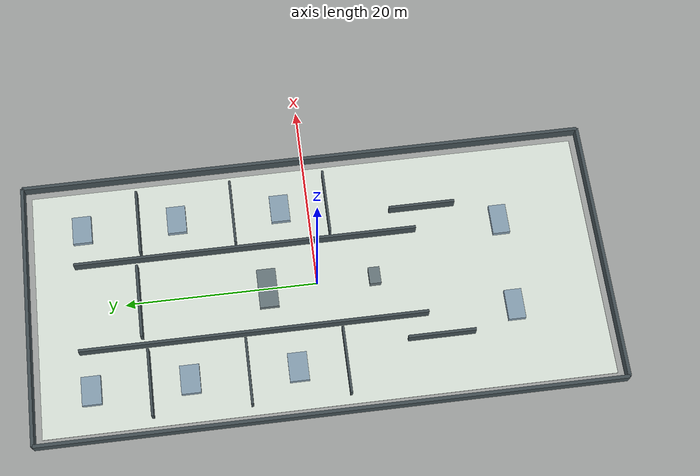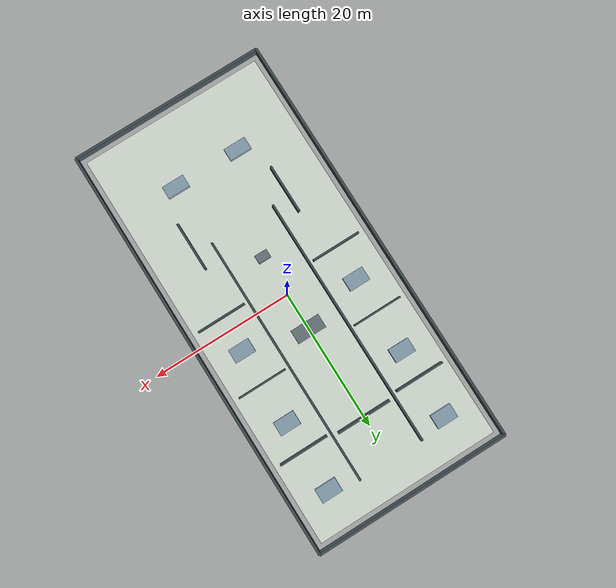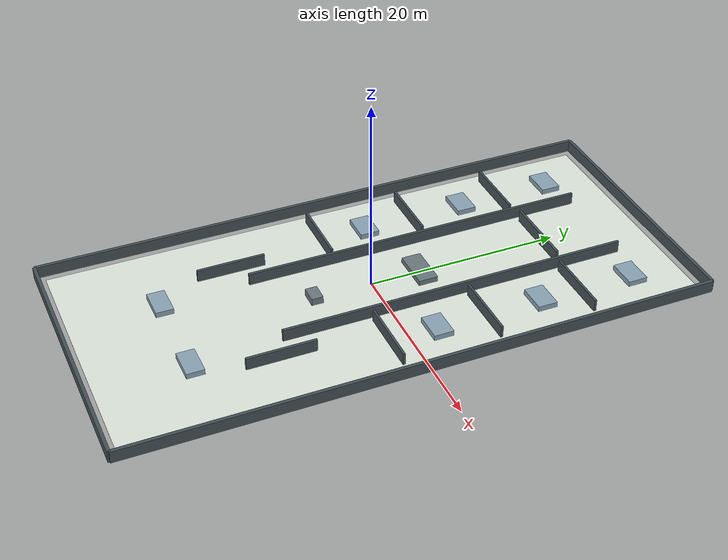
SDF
<?xml version="1.0" ?>
<sdf version="1.6">
  <world name="care_home_small">
    <gravity>0 0 -9.8</gravity>
    <scene>
      <ambient>0.65 0.65 0.65 1</ambient>
      <background>0.78 0.84 0.88 1</background>
    </scene>
    <include>
      <uri>model://sun</uri>
    </include>
    <model name="care_home_small_floor">
      <static>true</static>
      <pose>0.000 0.000 -0.025 0 0 0</pose>
      <link name="floor_link">
        <collision name="floor_collision">
          <geometry>
            <box><size>26.400 58.400 0.050</size></box>
          </geometry>
        </collision>
        <visual name="floor_visual">
          <geometry>
            <box><size>26.400 58.400 0.050</size></box>
          </geometry>
          <material><ambient>0.88 0.92 0.88 1</ambient><diffuse>0.88 0.92 0.88 1</diffuse></material>
        </visual>
      </link>
    </model>
    <model name="outer_north">
      <static>true</static>
      <pose>0.000 30.000 0.625 0 0 0</pose>
      <link name="outer_north_link">
        <collision name="outer_north_collision">
          <geometry>
            <box><size>28.000 0.350 1.250</size></box>
          </geometry>
        </collision>
        <visual name="outer_north_visual">
          <geometry>
            <box><size>28.000 0.350 1.250</size></box>
          </geometry>
          <material><ambient>0.27 0.32 0.34 1</ambient><diffuse>0.27 0.32 0.34 1</diffuse></material>
        </visual>
      </link>
    </model>
    <model name="outer_south">
      <static>true</static>
      <pose>0.000 -30.000 0.625 0 0 0</pose>
      <link name="outer_south_link">
        <collision name="outer_south_collision">
          <geometry>
            <box><size>28.000 0.350 1.250</size></box>
          </geometry>
        </collision>
        <visual name="outer_south_visual">
          <geometry>
            <box><size>28.000 0.350 1.250</size></box>
          </geometry>
          <material><ambient>0.27 0.32 0.34 1</ambient><diffuse>0.27 0.32 0.34 1</diffuse></material>
        </visual>
      </link>
    </model>
    <model name="outer_west">
      <static>true</static>
      <pose>-14.000 0.000 0.625 0 0 0</pose>
      <link name="outer_west_link">
        <collision name="outer_west_collision">
          <geometry>
            <box><size>0.350 60.000 1.250</size></box>
          </geometry>
        </collision>
        <visual name="outer_west_visual">
          <geometry>
            <box><size>0.350 60.000 1.250</size></box>
          </geometry>
          <material><ambient>0.27 0.32 0.34 1</ambient><diffuse>0.27 0.32 0.34 1</diffuse></material>
        </visual>
      </link>
    </model>
    <model name="outer_east">
      <static>true</static>
      <pose>14.000 0.000 0.625 0 0 0</pose>
      <link name="outer_east_link">
        <collision name="outer_east_collision">
          <geometry>
            <box><size>0.350 60.000 1.250</size></box>
          </geometry>
        </collision>
        <visual name="outer_east_visual">
          <geometry>
            <box><size>0.350 60.000 1.250</size></box>
          </geometry>
          <material><ambient>0.27 0.32 0.34 1</ambient><diffuse>0.27 0.32 0.34 1</diffuse></material>
        </visual>
      </link>
    </model>
    <model name="care_west_spine">
      <static>true</static>
      <pose>-4.700 7.000 0.625 0 0 0</pose>
      <link name="care_west_spine_link">
        <collision name="care_west_spine_collision">
          <geometry>
            <box><size>0.280 36.000 1.250</size></box>
          </geometry>
        </collision>
        <visual name="care_west_spine_visual">
          <geometry>
            <box><size>0.280 36.000 1.250</size></box>
          </geometry>
          <material><ambient>0.27 0.32 0.34 1</ambient><diffuse>0.27 0.32 0.34 1</diffuse></material>
        </visual>
      </link>
    </model>
    <model name="care_east_spine">
      <static>true</static>
      <pose>4.700 7.000 0.625 0 0 0</pose>
      <link name="care_east_spine_link">
        <collision name="care_east_spine_collision">
          <geometry>
            <box><size>0.280 36.000 1.250</size></box>
          </geometry>
        </collision>
        <visual name="care_east_spine_visual">
          <geometry>
            <box><size>0.280 36.000 1.250</size></box>
          </geometry>
          <material><ambient>0.27 0.32 0.34 1</ambient><diffuse>0.27 0.32 0.34 1</diffuse></material>
        </visual>
      </link>
    </model>
    <model name="care_west_room_divider_a">
      <static>true</static>
      <pose>-8.800 -2.000 0.625 0 0 0</pose>
      <link name="care_west_room_divider_a_link">
        <collision name="care_west_room_divider_a_collision">
          <geometry>
            <box><size>7.000 0.240 1.250</size></box>
          </geometry>
        </collision>
        <visual name="care_west_room_divider_a_visual">
          <geometry>
            <box><size>7.000 0.240 1.250</size></box>
          </geometry>
          <material><ambient>0.27 0.32 0.34 1</ambient><diffuse>0.27 0.32 0.34 1</diffuse></material>
        </visual>
      </link>
    </model>
    <model name="care_west_room_divider_b">
      <static>true</static>
      <pose>-8.800 8.000 0.625 0 0 0</pose>
      <link name="care_west_room_divider_b_link">
        <collision name="care_west_room_divider_b_collision">
          <geometry>
            <box><size>7.000 0.240 1.250</size></box>
          </geometry>
        </collision>
        <visual name="care_west_room_divider_b_visual">
          <geometry>
            <box><size>7.000 0.240 1.250</size></box>
          </geometry>
          <material><ambient>0.27 0.32 0.34 1</ambient><diffuse>0.27 0.32 0.34 1</diffuse></material>
        </visual>
      </link>
    </model>
    <model name="care_west_room_divider_c">
      <static>true</static>
      <pose>-8.800 18.000 0.625 0 0 0</pose>
      <link name="care_west_room_divider_c_link">
        <collision name="care_west_room_divider_c_collision">
          <geometry>
            <box><size>7.000 0.240 1.250</size></box>
          </geometry>
        </collision>
        <visual name="care_west_room_divider_c_visual">
          <geometry>
            <box><size>7.000 0.240 1.250</size></box>
          </geometry>
          <material><ambient>0.27 0.32 0.34 1</ambient><diffuse>0.27 0.32 0.34 1</diffuse></material>
        </visual>
      </link>
    </model>
    <model name="care_east_room_divider_a">
      <static>true</static>
      <pose>8.800 -2.000 0.625 0 0 0</pose>
      <link name="care_east_room_divider_a_link">
        <collision name="care_east_room_divider_a_collision">
          <geometry>
            <box><size>7.000 0.240 1.250</size></box>
          </geometry>
        </collision>
        <visual name="care_east_room_divider_a_visual">
          <geometry>
            <box><size>7.000 0.240 1.250</size></box>
          </geometry>
          <material><ambient>0.27 0.32 0.34 1</ambient><diffuse>0.27 0.32 0.34 1</diffuse></material>
        </visual>
      </link>
    </model>
    <model name="care_east_room_divider_b">
      <static>true</static>
      <pose>8.800 8.000 0.625 0 0 0</pose>
      <link name="care_east_room_divider_b_link">
        <collision name="care_east_room_divider_b_collision">
          <geometry>
            <box><size>7.000 0.240 1.250</size></box>
          </geometry>
        </collision>
        <visual name="care_east_room_divider_b_visual">
          <geometry>
            <box><size>7.000 0.240 1.250</size></box>
          </geometry>
          <material><ambient>0.27 0.32 0.34 1</ambient><diffuse>0.27 0.32 0.34 1</diffuse></material>
        </visual>
      </link>
    </model>
    <model name="care_east_room_divider_c">
      <static>true</static>
      <pose>8.800 18.000 0.625 0 0 0</pose>
      <link name="care_east_room_divider_c_link">
        <collision name="care_east_room_divider_c_collision">
          <geometry>
            <box><size>7.000 0.240 1.250</size></box>
          </geometry>
        </collision>
        <visual name="care_east_room_divider_c_visual">
          <geometry>
            <box><size>7.000 0.240 1.250</size></box>
          </geometry>
          <material><ambient>0.27 0.32 0.34 1</ambient><diffuse>0.27 0.32 0.34 1</diffuse></material>
        </visual>
      </link>
    </model>
    <model name="care_lobby_wall_l">
      <static>true</static>
      <pose>-7.200 -12.000 0.625 0 0 0</pose>
      <link name="care_lobby_wall_l_link">
        <collision name="care_lobby_wall_l_collision">
          <geometry>
            <box><size>0.280 7.000 1.250</size></box>
          </geometry>
        </collision>
        <visual name="care_lobby_wall_l_visual">
          <geometry>
            <box><size>0.280 7.000 1.250</size></box>
          </geometry>
          <material><ambient>0.27 0.32 0.34 1</ambient><diffuse>0.27 0.32 0.34 1</diffuse></material>
        </visual>
      </link>
    </model>
    <model name="care_lobby_wall_r">
      <static>true</static>
      <pose>7.200 -12.000 0.625 0 0 0</pose>
      <link name="care_lobby_wall_r_link">
        <collision name="care_lobby_wall_r_collision">
          <geometry>
            <box><size>0.280 7.000 1.250</size></box>
          </geometry>
        </collision>
        <visual name="care_lobby_wall_r_visual">
          <geometry>
            <box><size>0.280 7.000 1.250</size></box>
          </geometry>
          <material><ambient>0.27 0.32 0.34 1</ambient><diffuse>0.27 0.32 0.34 1</diffuse></material>
        </visual>
      </link>
    </model>
    <model name="care_dining_table">
      <static>true</static>
      <pose>0.000 5.200 0.275 0 0 0</pose>
      <link name="care_dining_table_link">
        <collision name="care_dining_table_collision">
          <geometry>
            <box><size>4.200 2.000 0.550</size></box>
          </geometry>
        </collision>
        <visual name="care_dining_table_visual">
          <geometry>
            <box><size>4.200 2.000 0.550</size></box>
          </geometry>
          <material><ambient>0.42 0.48 0.50 1</ambient><diffuse>0.42 0.48 0.50 1</diffuse></material>
        </visual>
      </link>
    </model>
    <model name="care_sofa_1">
      <static>true</static>
      <pose>-4.800 -20.000 0.275 0 0 0</pose>
      <link name="care_sofa_1_link">
        <collision name="care_sofa_1_collision">
          <geometry>
            <box><size>3.200 1.800 0.550</size></box>
          </geometry>
        </collision>
        <visual name="care_sofa_1_visual">
          <geometry>
            <box><size>3.200 1.800 0.550</size></box>
          </geometry>
          <material><ambient>0.55 0.65 0.72 1</ambient><diffuse>0.55 0.65 0.72 1</diffuse></material>
        </visual>
      </link>
    </model>
    <model name="care_sofa_2">
      <static>true</static>
      <pose>4.800 -20.000 0.275 0 0 0</pose>
      <link name="care_sofa_2_link">
        <collision name="care_sofa_2_collision">
          <geometry>
            <box><size>3.200 1.800 0.550</size></box>
          </geometry>
        </collision>
        <visual name="care_sofa_2_visual">
          <geometry>
            <box><size>3.200 1.800 0.550</size></box>
          </geometry>
          <material><ambient>0.55 0.65 0.72 1</ambient><diffuse>0.55 0.65 0.72 1</diffuse></material>
        </visual>
      </link>
    </model>
    <model name="care_med_wall">
      <static>true</static>
      <pose>0.000 18.500 0.625 0 0 0</pose>
      <link name="care_med_wall_link">
        <collision name="care_med_wall_collision">
          <geometry>
            <box><size>7.800 0.280 1.250</size></box>
          </geometry>
        </collision>
        <visual name="care_med_wall_visual">
          <geometry>
            <box><size>7.800 0.280 1.250</size></box>
          </geometry>
          <material><ambient>0.27 0.32 0.34 1</ambient><diffuse>0.27 0.32 0.34 1</diffuse></material>
        </visual>
      </link>
    </model>
    <model name="care_bed_w1">
      <static>true</static>
      <pose>-8.800 3.000 0.275 0 0 0</pose>
      <link name="care_bed_w1_link">
        <collision name="care_bed_w1_collision">
          <geometry>
            <box><size>3.000 2.000 0.550</size></box>
          </geometry>
        </collision>
        <visual name="care_bed_w1_visual">
          <geometry>
            <box><size>3.000 2.000 0.550</size></box>
          </geometry>
          <material><ambient>0.55 0.65 0.72 1</ambient><diffuse>0.55 0.65 0.72 1</diffuse></material>
        </visual>
      </link>
    </model>
    <model name="care_bed_w2">
      <static>true</static>
      <pose>-8.800 14.000 0.275 0 0 0</pose>
      <link name="care_bed_w2_link">
        <collision name="care_bed_w2_collision">
          <geometry>
            <box><size>3.000 2.000 0.550</size></box>
          </geometry>
        </collision>
        <visual name="care_bed_w2_visual">
          <geometry>
            <box><size>3.000 2.000 0.550</size></box>
          </geometry>
          <material><ambient>0.55 0.65 0.72 1</ambient><diffuse>0.55 0.65 0.72 1</diffuse></material>
        </visual>
      </link>
    </model>
    <model name="care_bed_w3">
      <static>true</static>
      <pose>-8.800 24.000 0.275 0 0 0</pose>
      <link name="care_bed_w3_link">
        <collision name="care_bed_w3_collision">
          <geometry>
            <box><size>3.000 2.000 0.550</size></box>
          </geometry>
        </collision>
        <visual name="care_bed_w3_visual">
          <geometry>
            <box><size>3.000 2.000 0.550</size></box>
          </geometry>
          <material><ambient>0.55 0.65 0.72 1</ambient><diffuse>0.55 0.65 0.72 1</diffuse></material>
        </visual>
      </link>
    </model>
    <model name="care_bed_e1">
      <static>true</static>
      <pose>8.800 3.000 0.275 0 0 0</pose>
      <link name="care_bed_e1_link">
        <collision name="care_bed_e1_collision">
          <geometry>
            <box><size>3.000 2.000 0.550</size></box>
          </geometry>
        </collision>
        <visual name="care_bed_e1_visual">
          <geometry>
            <box><size>3.000 2.000 0.550</size></box>
          </geometry>
          <material><ambient>0.55 0.65 0.72 1</ambient><diffuse>0.55 0.65 0.72 1</diffuse></material>
        </visual>
      </link>
    </model>
    <model name="care_bed_e2">
      <static>true</static>
      <pose>8.800 14.000 0.275 0 0 0</pose>
      <link name="care_bed_e2_link">
        <collision name="care_bed_e2_collision">
          <geometry>
            <box><size>3.000 2.000 0.550</size></box>
          </geometry>
        </collision>
        <visual name="care_bed_e2_visual">
          <geometry>
            <box><size>3.000 2.000 0.550</size></box>
          </geometry>
          <material><ambient>0.55 0.65 0.72 1</ambient><diffuse>0.55 0.65 0.72 1</diffuse></material>
        </visual>
      </link>
    </model>
    <model name="care_bed_e3">
      <static>true</static>
      <pose>8.800 24.000 0.275 0 0 0</pose>
      <link name="care_bed_e3_link">
        <collision name="care_bed_e3_collision">
          <geometry>
            <box><size>3.000 2.000 0.550</size></box>
          </geometry>
        </collision>
        <visual name="care_bed_e3_visual">
          <geometry>
            <box><size>3.000 2.000 0.550</size></box>
          </geometry>
          <material><ambient>0.55 0.65 0.72 1</ambient><diffuse>0.55 0.65 0.72 1</diffuse></material>
        </visual>
      </link>
    </model>
    <model name="care_nurse_cart">
      <static>true</static>
      <pose>0.000 -6.000 0.375 0 0 0</pose>
      <link name="care_nurse_cart_link">
        <collision name="care_nurse_cart_collision">
          <geometry>
            <box><size>1.800 1.200 0.750</size></box>
          </geometry>
        </collision>
        <visual name="care_nurse_cart_visual">
          <geometry>
            <box><size>1.800 1.200 0.750</size></box>
          </geometry>
          <material><ambient>0.42 0.48 0.50 1</ambient><diffuse>0.42 0.48 0.50 1</diffuse></material>
        </visual>
      </link>
    </model>
  </world>
</sdf>
